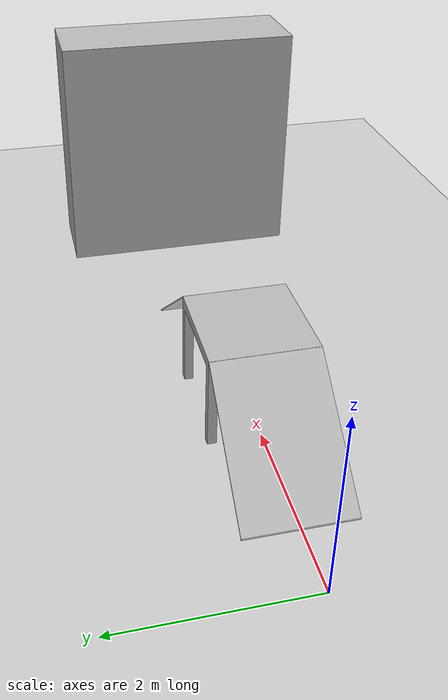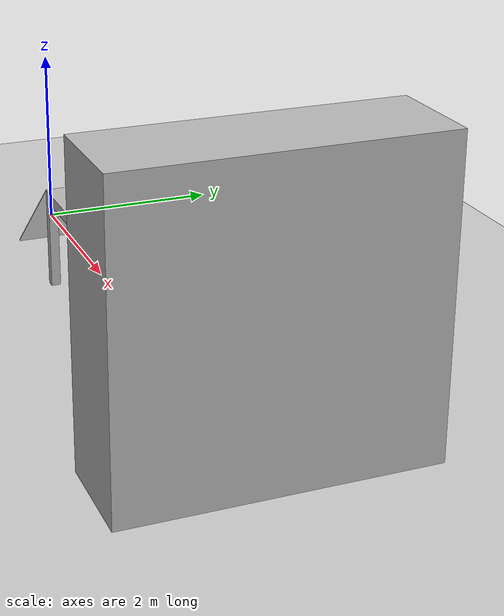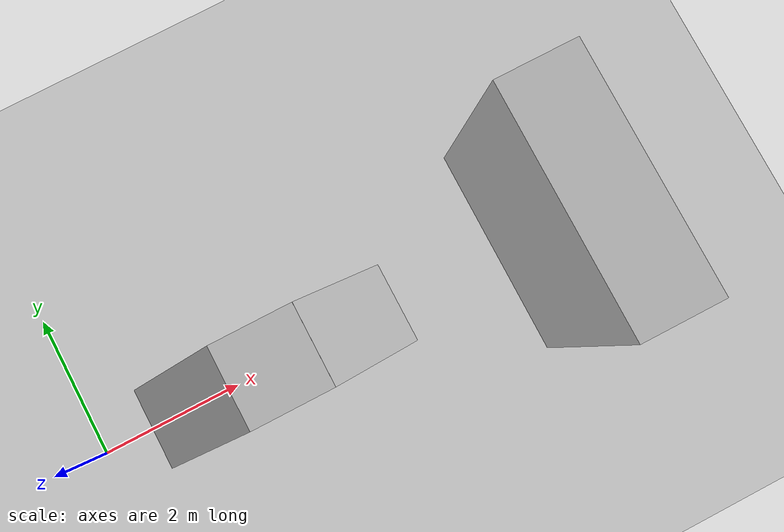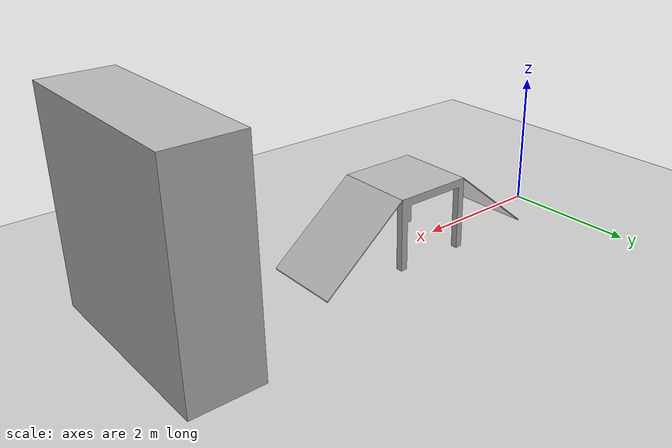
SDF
<?xml version="1.0" ?>
<sdf version="1.4">
  <world name="default">

    <gui>
      <plugin name="keyboard" filename="libKeyboardGUIPlugin.so"/>
    </gui>

    <light name='sun1' type='directional'>
      <cast_shadows>1</cast_shadows>
      <pose>0 0 10 0 -0 0</pose>
      <diffuse>0.8 0.8 0.8 1</diffuse>
      <specular>0.2 0.2 0.2 1</specular>
      <attenuation>
        <range>1000</range>
        <constant>0.9</constant>
        <linear>0.01</linear>
        <quadratic>0.001</quadratic>
      </attenuation>
      <direction>-0.5 0.1 -0.9</direction>
    </light>
    <light name='sun2' type='point'>
      <cast_shadows>1</cast_shadows>
      <pose>0 0 10 0 -0 0</pose>
      <diffuse>0.8 0.8 0.8 1</diffuse>
      <specular>0.2 0.2 0.2 1</specular>
      <attenuation>
        <range>1000</range>
        <constant>0.9</constant>
        <linear>0.01</linear>
        <quadratic>0.001</quadratic>
      </attenuation>
      <direction>-0.5 0.1 -0.9</direction>
    </light>

    <model name='ground_plane'>
      <static>1</static>
      <link name='link'>
        <collision name='collision'>
          <geometry>
            <plane>
              <normal>0 0 1</normal>
              <size>100 100</size>
            </plane>
          </geometry>
          <surface>
            <friction>
              <ode>
                <mu>100</mu>
                <mu2>50</mu2>
              </ode>
              <torsional>
                <ode/>
              </torsional>
            </friction>
            <contact>
              <ode/>
            </contact>
            <bounce/>
          </surface>
          <max_contacts>10</max_contacts>
        </collision>
        <visual name='visual'>
          <cast_shadows>0</cast_shadows>
          <geometry>
            <plane>
              <normal>0 0 1</normal>
              <size>100 100</size>
            </plane>
          </geometry>
          <material>
            <script>
              <uri>file://media/materials/scripts/gazebo.material</uri>
              <name>Gazebo/Grey</name>
            </script>
          </material>
        </visual>
        <self_collide>0</self_collide>
        <kinematic>0</kinematic>
      </link>
    </model>

    <!-- ramp up -->
    <model name='nist_simple_ramp_120'>
      <static>1</static>
      <pose frame=''>0.7 0 0 -0.1 0 -1.57079</pose>
      <link name='nist_simple_ramp_120_link'>
      <pose frame=''>0 0.589290 0 0 0 0</pose>
        <collision name='collision'>
          <geometry>
            <mesh>
              <uri>model://nist_simple_ramp_120/meshes/nist_simple_ramp_120.dae</uri>
              <scale>1 1 1</scale>
            </mesh>
          </geometry>
          <max_contacts>10</max_contacts>
          <surface>
            <contact>
              <ode/>
            </contact>
            <bounce/>
            <friction>
              <torsional>
                <ode/>
              </torsional>
              <ode/>
            </friction>
          </surface>
        </collision>
        <visual name='visual'>
          <geometry>
            <mesh>
              <uri>model://nist_simple_ramp_120/meshes/nist_simple_ramp_120.dae</uri>
              <scale>1 1 1</scale>
            </mesh>
          </geometry>
        </visual>
        <self_collide>0</self_collide>
        <enable_wind>0</enable_wind>
        <kinematic>0</kinematic>
      </link>
    </model>

    <!-- elevated floor -->
    <model name='nist_elevated_floor_120'>
      <static>1</static>
      <pose frame=''>2.581838 0 -0.123606 0 0 0</pose>
      <link name='nist_elevated_floor_120'>
        <collision name='collision'>
          <geometry>
            <mesh>
              <uri>model://nist_elevated_floor_120/meshes/nist_elevated_floor_120.dae</uri>
              <scale>1 1 1</scale>
            </mesh>
          </geometry>
          <max_contacts>10</max_contacts>
          <surface>
            <contact>
              <ode/>
            </contact>
            <bounce/>
            <friction>
              <torsional>
                <ode/>
              </torsional>
              <ode/>
            </friction>
          </surface>
        </collision>
        <visual name='visual'>
          <geometry>
            <mesh>
              <uri>model://nist_elevated_floor_120/meshes/nist_elevated_floor_120.dae</uri>
              <scale>1 1 1</scale>
            </mesh>
          </geometry>
        </visual>
        <self_collide>0</self_collide>
        <enable_wind>0</enable_wind>
        <kinematic>0</kinematic>
      </link>
    </model>

    <!-- ramp down -->
    <model name='nist_simple_ramp_120_0'>
      <static>1</static>
      <pose frame=''>4.465617 0 0 -0.1 0 1.57079</pose>
      <link name='nist_simple_ramp_120_link'>
        <pose frame=''>0 0.589290 0 0 0 0</pose>
        <collision name='collision'>
          <geometry>
            <mesh>
              <uri>model://nist_simple_ramp_120/meshes/nist_simple_ramp_120.dae</uri>
              <scale>1 1 1</scale>
            </mesh>
          </geometry>
          <max_contacts>10</max_contacts>
          <surface>
            <contact>
              <ode/>
            </contact>
            <bounce/>
            <friction>
              <torsional>
                <ode/>
              </torsional>
              <ode/>
            </friction>
          </surface>
        </collision>
        <visual name='visual'>
          <geometry>
            <mesh>
              <uri>model://nist_simple_ramp_120/meshes/nist_simple_ramp_120.dae</uri>
              <scale>1 1 1</scale>
            </mesh>
          </geometry>
        </visual>
        <self_collide>0</self_collide>
        <enable_wind>0</enable_wind>
        <kinematic>0</kinematic>
      </link>
    </model>

    <!-- wall to force esdf updates -->
    <model name='brick_box_3x1x3'>
      <static>1</static>
      <pose frame=''>6.5 0 1.5 0 0 -1.5709</pose>
      <link name='chassis'>
        <collision name='collision'>
          <geometry>
            <box>
              <size>3 1 3</size>
            </box>
          </geometry>
          <max_contacts>10</max_contacts>
          <surface>
            <contact>
              <ode/>
            </contact>
            <bounce/>
            <friction>
              <torsional>
                <ode/>
              </torsional>
              <ode/>
            </friction>
          </surface>
        </collision>
        <visual name='visual'>
          <geometry>
            <mesh>
              <uri>model://brick_box_3x1x3/meshes/simple_box.dae</uri>
              <scale>3 1 3</scale>
            </mesh>
          </geometry>
          <material>
            <script>
              <uri>model://brick_box_3x1x3/materials/scripts</uri>
              <uri>model://brick_box_3x1x3/materials/textures</uri>
              <name>BrickBox/Diffuse</name>
            </script>
          </material>
        </visual>
        <self_collide>0</self_collide>
        <kinematic>0</kinematic>
      </link>
    </model>
  </world>
</sdf>
